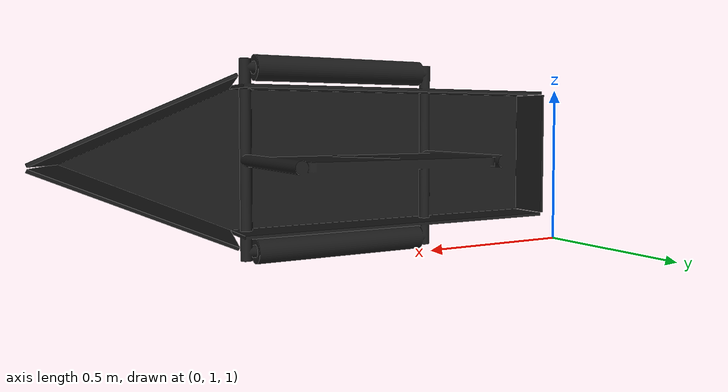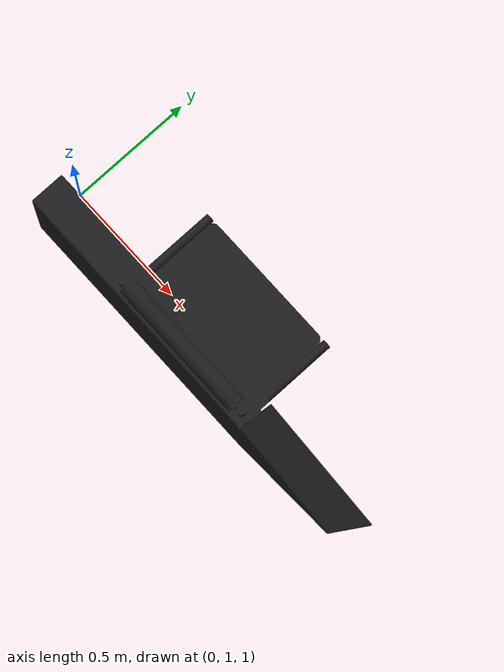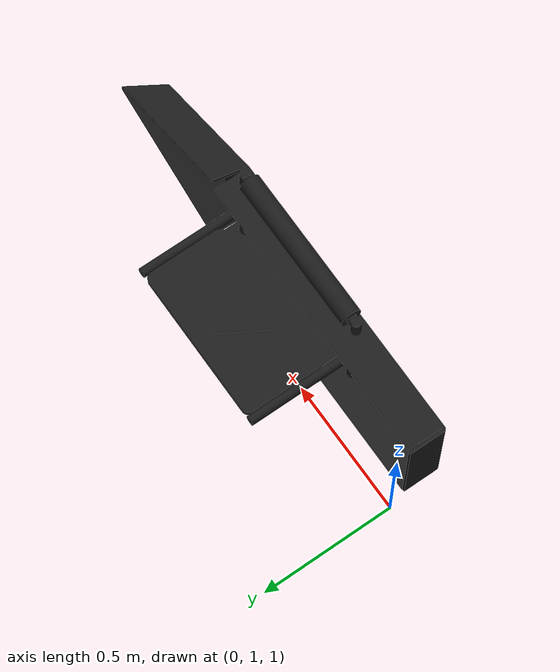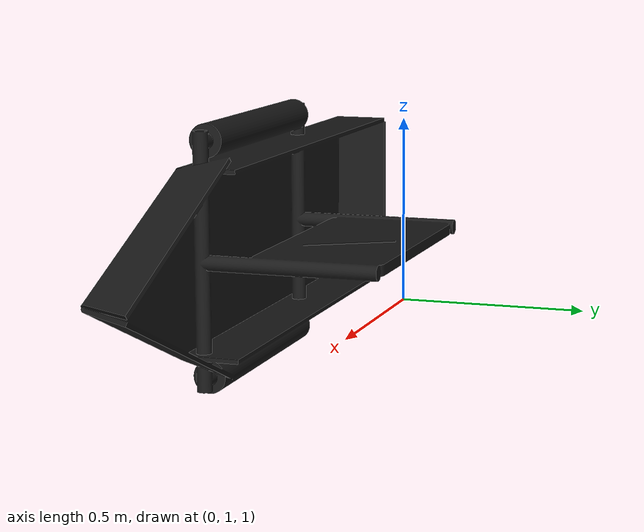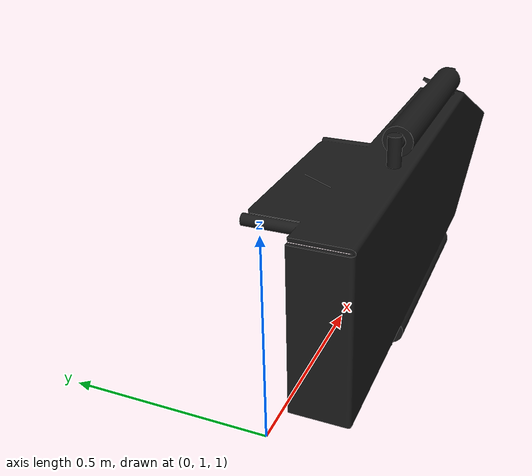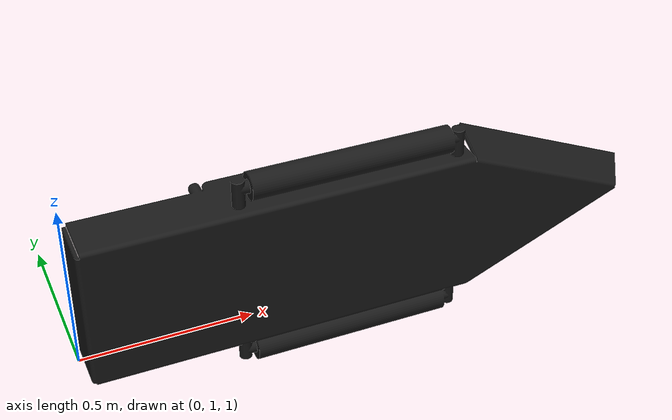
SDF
<?xml version='1.0'?>
<sdf version='1.6'>
  <model name='aqua_t4_black'>
    <static>false</static>
    <plugin filename="gz-waves1-hydrodynamics-system" name="gz::sim::systems::Hydrodynamics"/>
    <link name='link'>
      <visual name='visual'>
        <geometry>
          <mesh>
            <uri>model://aqua_t4_black/meshes/AQUA_T4_ASSY_WATER.STL</uri>
            <scale>0.001 0.001 0.001</scale>
          </mesh>
        </geometry>
        <material>
          <ambient>0.05 0.05 0.05 1</ambient>
          <diffuse>0.1 0.1 0.1 1</diffuse>
          <specular>0.1 0.1 0.1 1</specular>
        </material>
      </visual>
      <collision name='collision'>
        <geometry><box><size>1.5 0.5 0.4</size></box></geometry>
      </collision>
      <inertial>
        <mass>100</mass>
        <inertia>
          <ixx>3.42</ixx><ixy>0</ixy><ixz>0</ixz>
          <iyy>20.08</iyy><iyz>0</iyz>
          <izz>20.83</izz>
        </inertia>
      </inertial>
    </link>
  </model>
</sdf>
